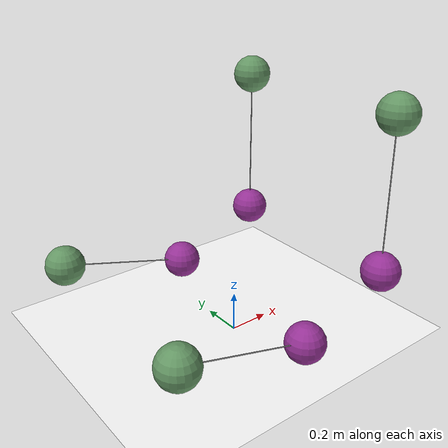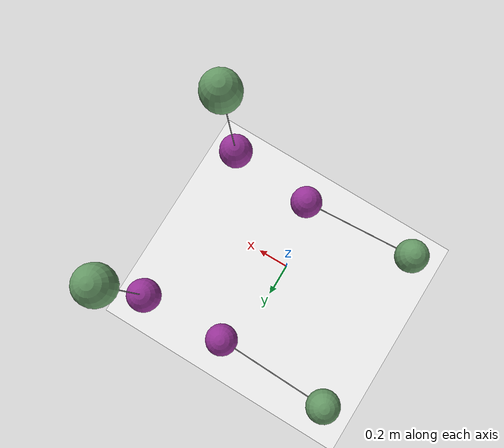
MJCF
<mujoco model="">
  <option timestep="1e-02"/>
  <asset>
    <texture name="grid" type="2d" builtin="checker" rgb1="0.1 0.2 0.3" rgb2="0.2 0.3 0.4" width="512" height="512"/>
    <material name="grid"  texture="grid" texrepeat="1 1" texuniform="true" reflectance="0.2"/>
  </asset>
  <default>
      <geom type="sphere" size="0.1" rgba="0.4 0.6 0.4 1"/>
      <default class="free">
          <geom rgba="0.6 0.2 0.6 1"/>
          <joint type="free"/>
      </default>
  </default>

  <worldbody>
      <!-- Tension and compression elastic forces -->
      <body pos="-0.6 -0.4 0.3">
          <site name="s0"/>
          <geom/>
      </body>
      <body pos="0.1 -0.4 0.1" childclass="free">
          <joint/>
          <site name="s1"/>
          <geom/>
      </body>

      <!-- Tension only elastic forces -->
      <body pos="-0.6 0.6 0.3">
          <site name="s2"/>
          <geom/>
      </body>
      <body pos="0.1 0.6 0.1" childclass="free">
          <joint/>
          <site name="s3"/>
          <geom/>
      </body>

      <!-- Following bodies are to ensure that resulting stiffness are equal in both cases -->
      <body pos="0.6 -0.4 1.0981">
          <site name="s4"/>
          <geom/>
      </body>
      <body pos="0.6 -0.4 0.3" childclass="free">
          <joint/>
          <site name="s5"/>
          <geom mass="1"/>
      </body>

      <body pos="0.6 0.6 1.0981">
          <site name="s6"/>
          <geom/>
      </body>
      <body pos="0.6 0.6 0.3" childclass="free">
          <joint/>
          <site name="s7"/>
          <geom mass="1"/>
      </body>

    <geom type="plane" size="0 0 0.05" material="grid" rgba="1 1 1 1"/>
    <light mode="trackcom" pos="0 0.5 6" diffuse="0.8 0.8 0.8" specular="0.3 0.3 0.3"/>
  </worldbody>
  <tendon>
    <spatial stiffness="100" springlength="0.5">
      <site site="s0"/>
      <site site="s1"/>
    </spatial>
    <spatial limited="true" springlength="0.5" range="0 0.5" solimplimit="0.001 0.001 0.001 0.5 1" solreflimit="-100 -0" >
      <site site="s2"/>
      <site site="s3"/>
    </spatial>

    <spatial springlength="0.7" stiffness="100">
      <site site="s4"/>
      <site site="s5"/>
    </spatial>
    <spatial springlength="0.7" limited="true" range="0 0.7" solimplimit="0.001 0.001 0.001 0.5 1" solreflimit="-100 -0" >
      <site site="s6"/>
      <site site="s7"/>
    </spatial>
</tendon>
</mujoco>
